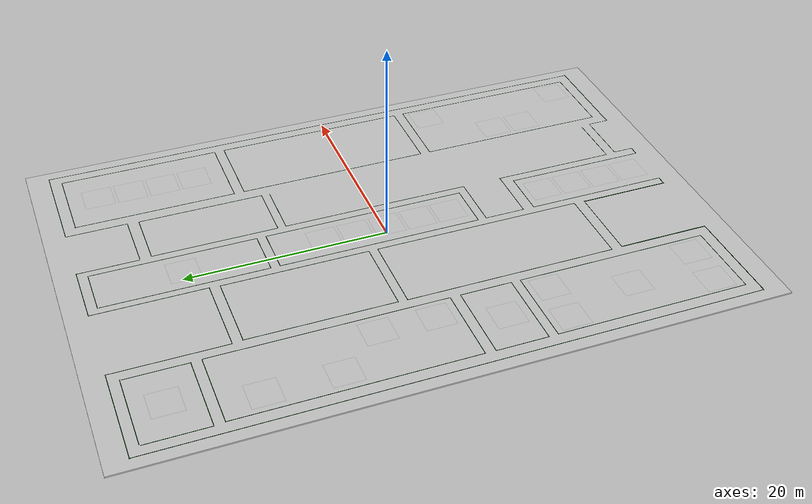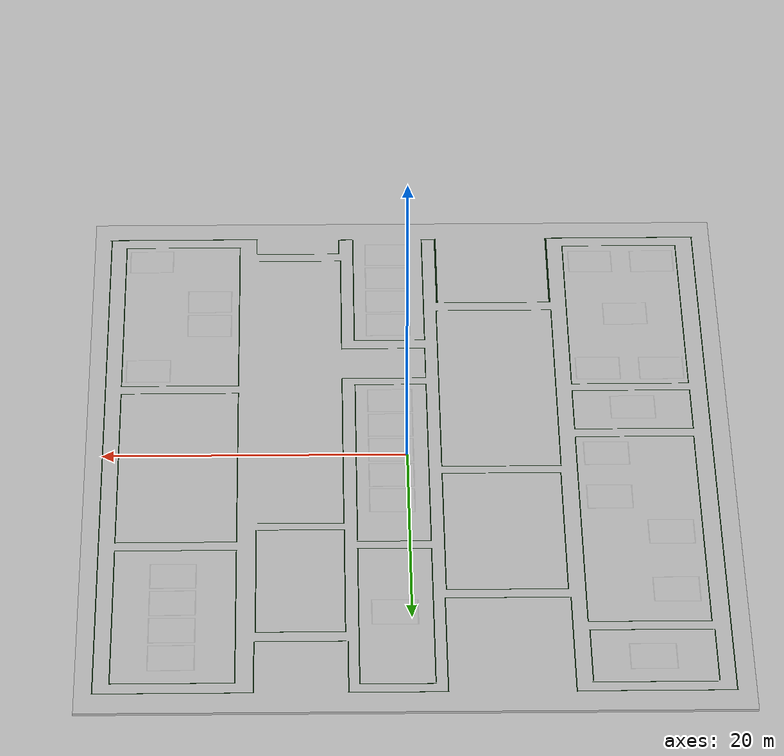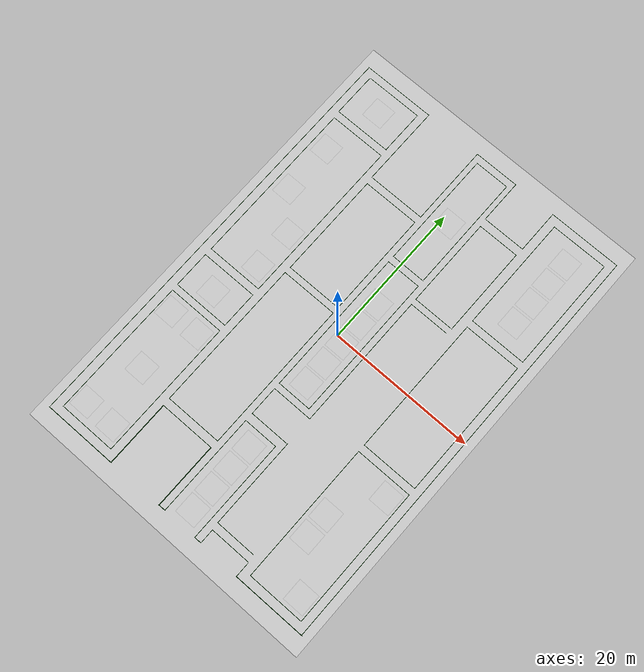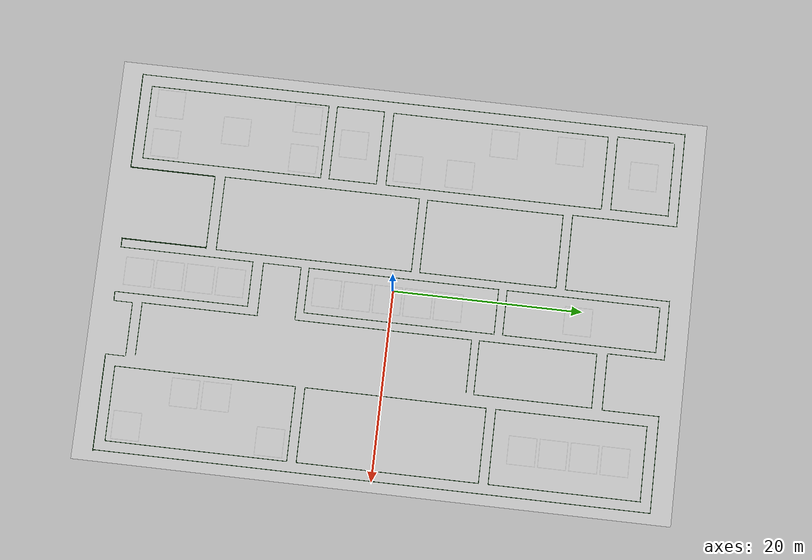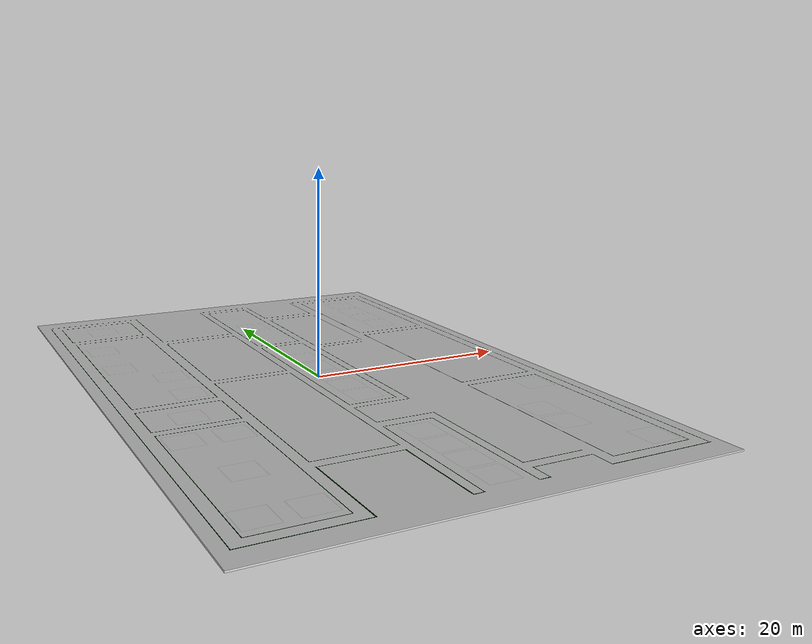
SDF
<?xml version="1.0" ?>
<sdf version="1.6">
  <model name="NormalFloor">
    <link name="link">
      <inertial>
        <mass>1000</mass>
      </inertial>
      <collision name="collision">
        <geometry>
          <mesh>
            <uri>model://Normalfloor/meshes/floor.stl</uri>
            <scale>1 1 1</scale>
          </mesh>
        </geometry>
        <surface>
          <friction>
            <ode>
              <mu>10</mu>
              <mu2>10</mu2>
              <fdir1>0 0 0</fdir1>
              <slip1>0</slip1>
              <slip2>0</slip2>
            </ode>
          </friction>
        </surface>
      </collision>
      <visual name="visual">
	    <geometry>
          <mesh>
            <uri>model://Normalfloor/meshes/floor.dae</uri>
          </mesh>
        </geometry>
      <meta> <layer> 1 </layer></meta>
</visual>
    </link>
<static>1</static>
  </model>
</sdf>
